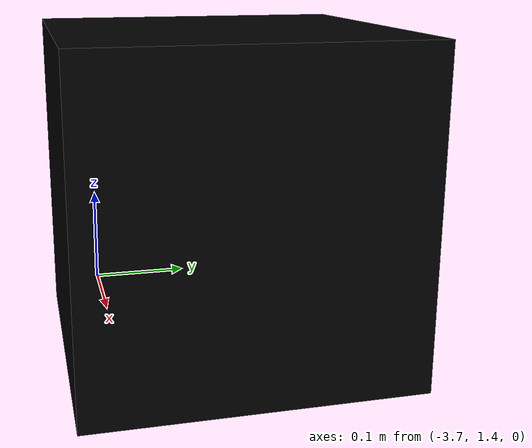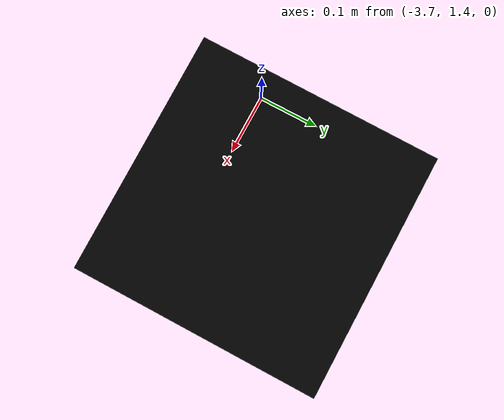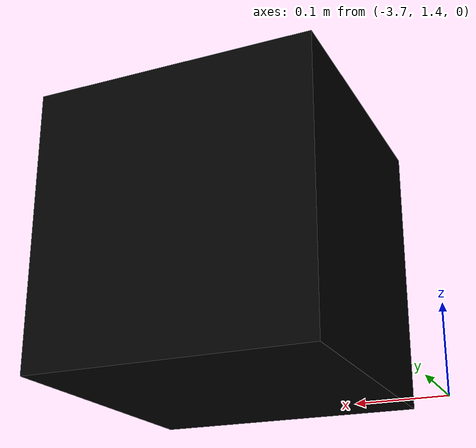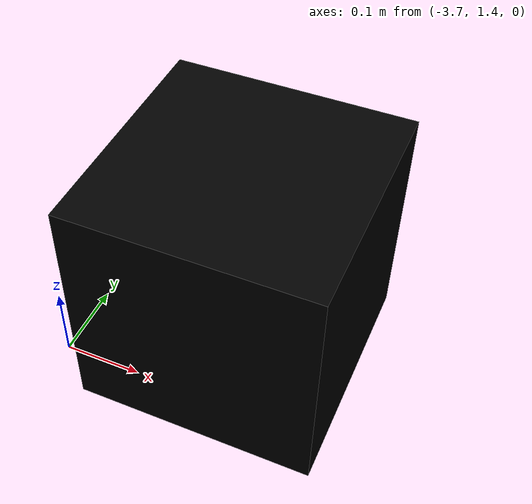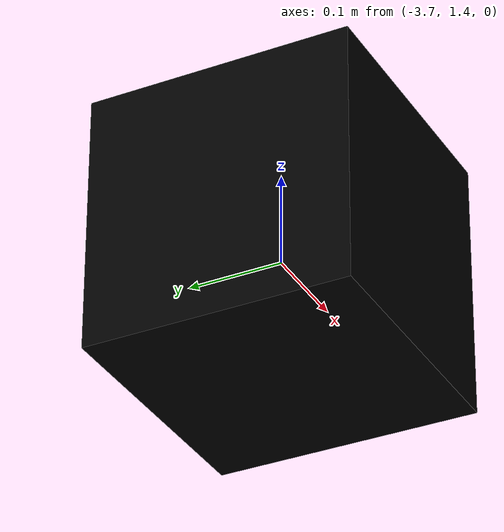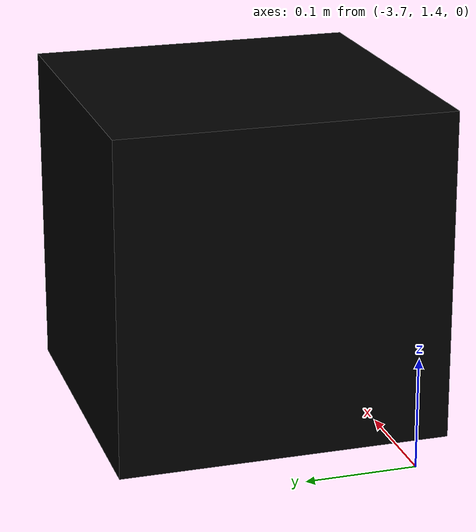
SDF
<?xml version='1.0'?>
<sdf version='1.4'>
  <model name="AruCo_Block_16">
    <static>true</static>
    <link name='chassis'>
            <pose>-3.5 1.5 0.15 0 0 0</pose>

            <collision name='collision'>
              <geometry>
                <box>
                  <size>.3 .3 .3</size>
                </box>
              </geometry>
            </collision>

            <visual name='visual_16'>
              <geometry>
                <box>
                  <size>.3 .3 .3</size>
                </box>
              </geometry>
              <material>
                <script>
                <uri>model://AruCo_Block_16/materials/scripts</uri>
                <uri>model://AruCo_Block_16/materials/textures</uri>
                <name>block16</name>
                </script>
                <ambient>0 0 0 1</ambient>
                <diffuse>0 0 0 1</diffuse>
                <specular>0 0 0 0</specular>
                <emissive>1 1 1 1</emissive>
              </material>
            </visual>
          </link>
  </model>
</sdf>
